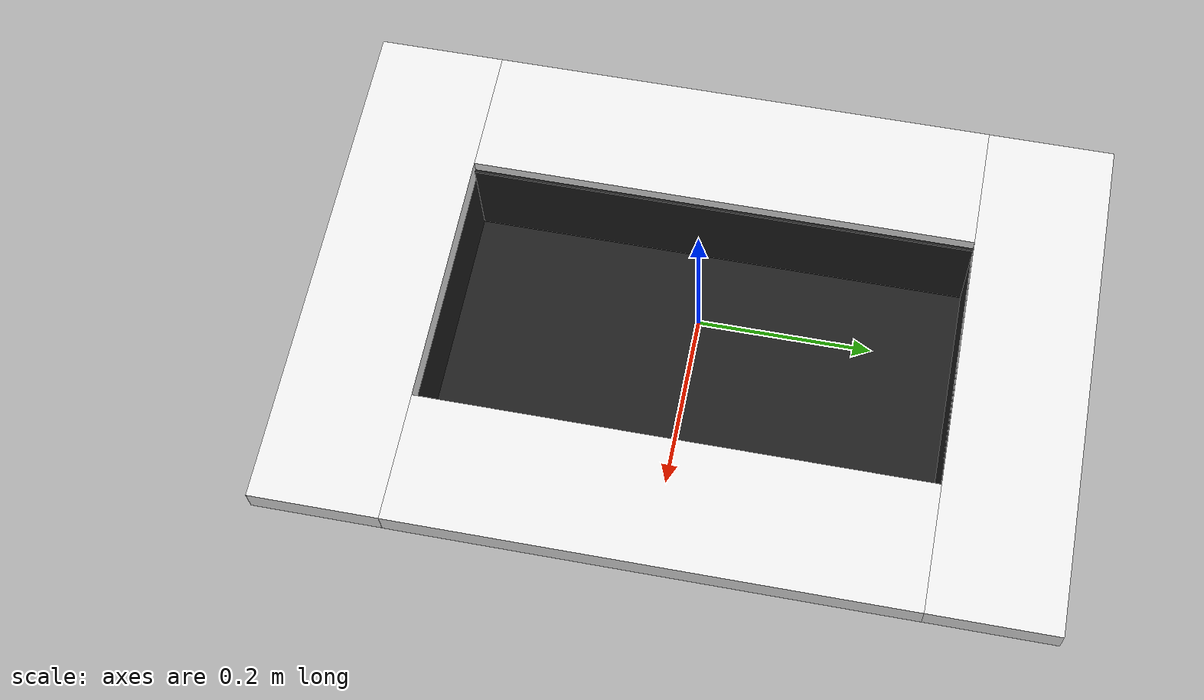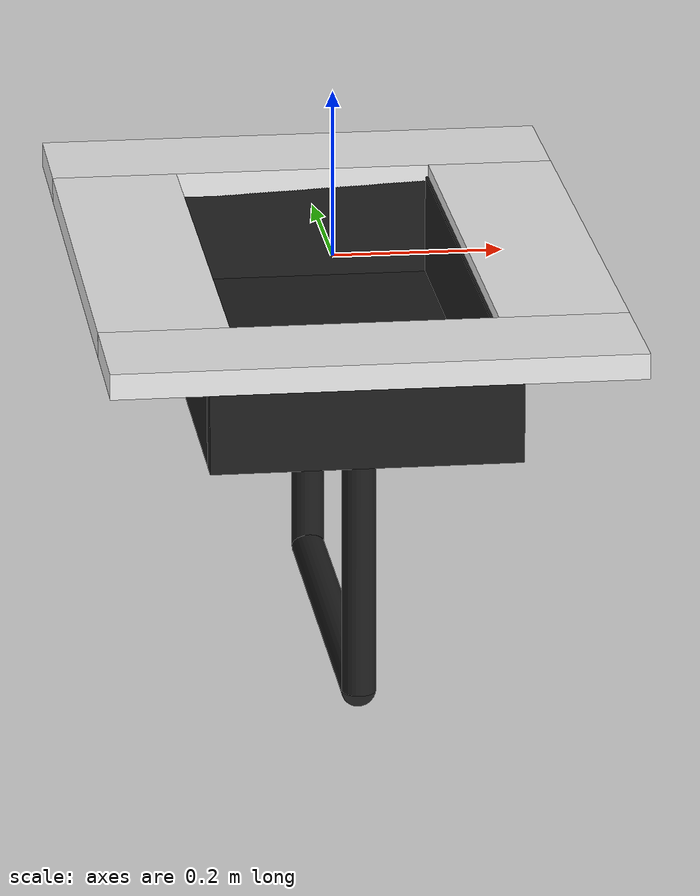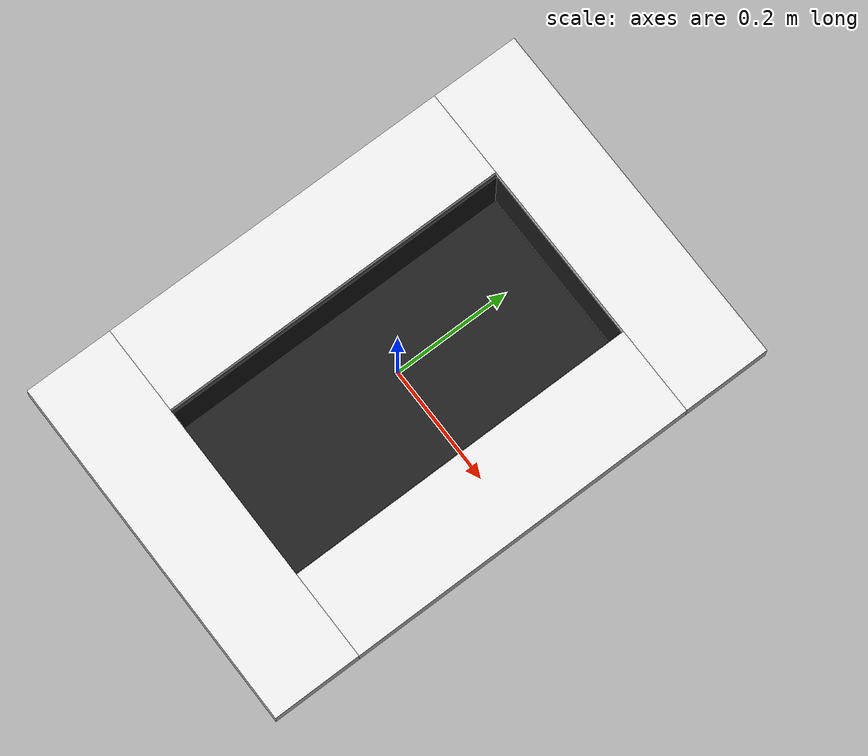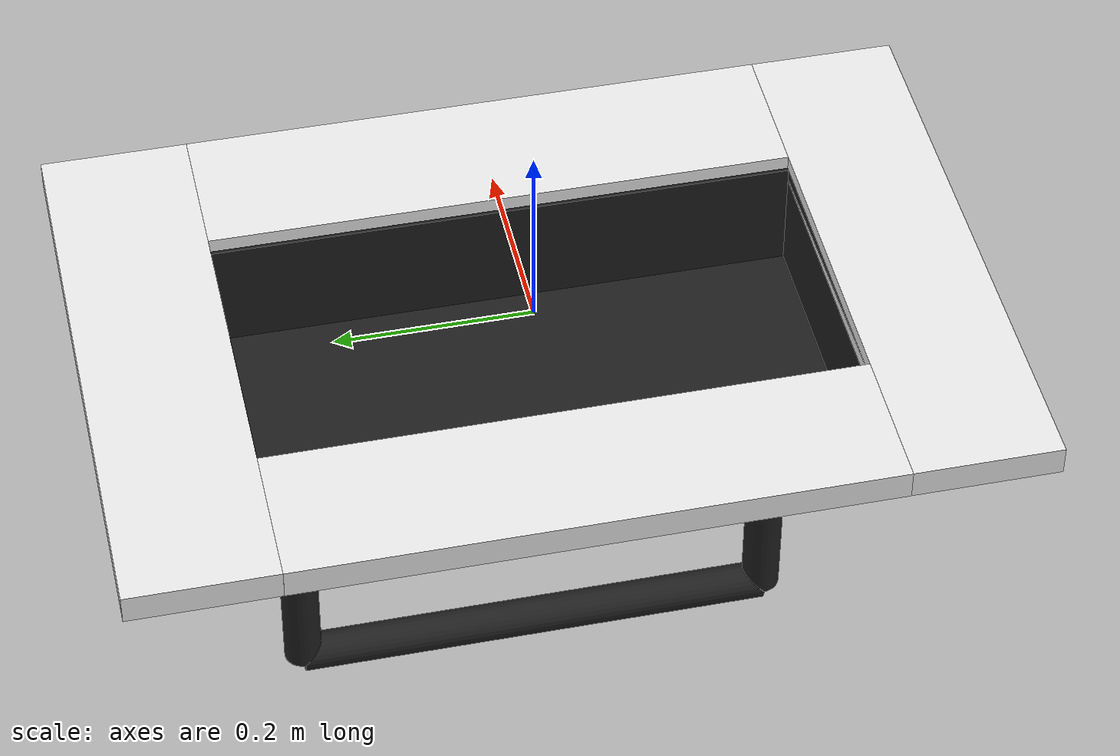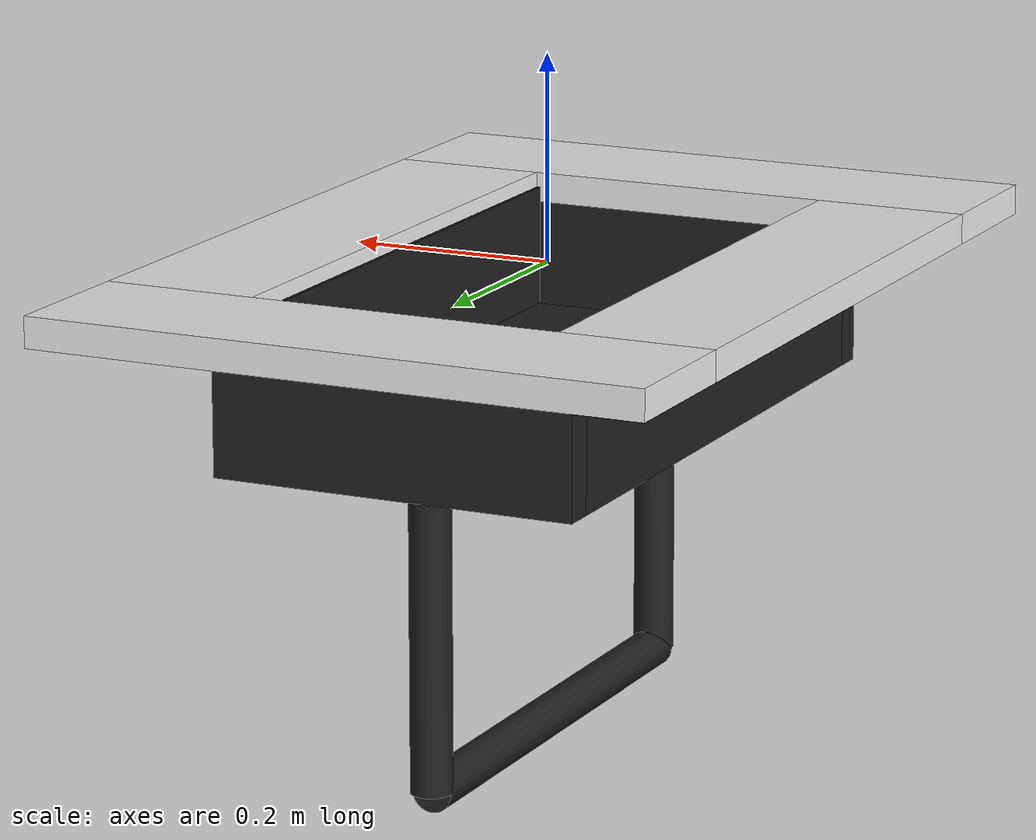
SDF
<?xml version='1.0'?>
<sdf version='1.5'>

  <model name='bin'>
    <pose>0 0 0 0 0 0</pose>
    <self_collide> 0 </self_collide>
    <static> 1</static>

    <link name='rim'>
      <pose>0 0 0 0 0 0</pose>
      <visual name='edge1'>
        <pose>0.2286 0 0 0 0 0</pose>
        <geometry>
          <box><size>0.15 0.6 0.03</size></box>
        </geometry>
        <material>
          <script>
            <uri>file://media/materials/scripts/gazebo.material</uri>
            <name>Gazebo/White</name>
          </script>
        </material>
      </visual>
      <collision name='e1_collide'>
        <pose>0.2286 0 0 0 0 0</pose>
        <geometry>
          <box><size>0.15 0.6 0.03</size></box>
        </geometry>
      </collision>
      <visual name='edge2'>
        <pose>-0.2286 0 0 0 0 0</pose>
        <geometry>
          <box><size>0.15 0.6 0.03</size></box>
        </geometry>
        <material>
          <script>
            <uri>file://media/materials/scripts/gazebo.material</uri>
            <name>Gazebo/White</name>
          </script>
        </material>
      </visual>
      <collision name='e2_collide'>
        <pose>-0.2286 0 0 0 0 0</pose>
        <geometry>
          <box><size>0.15 0.6 0.03</size></box>
        </geometry>
      </collision>
      <visual name='edge3'>
        <pose>0 0.375 0 0 0 0</pose>
        <geometry>
          <box><size>0.607 0.15 0.03</size></box>
        </geometry>
        <material>
          <script>
            <uri>file://media/materials/scripts/gazebo.material</uri>
            <name>Gazebo/White</name>
          </script>
        </material>
      </visual>
      <collision name='e3_collide'>
        <pose>0 0.375 0 0 0 0</pose>
        <geometry>
          <box><size>0.607 0.15 0.03</size></box>
        </geometry>
      </collision>
      <visual name='edge4'>
        <pose>0 -0.375 0 0 0 0</pose>
        <geometry>
          <box><size>0.607 0.15 0.03</size></box>
        </geometry>
        <material>
          <script>
            <uri>file://media/materials/scripts/gazebo.material</uri>
            <name>Gazebo/White</name>
          </script>
        </material>
      </visual>
      <collision name='e4_collide'>
        <pose>0 -0.375 0 0 0 0</pose>
        <geometry>
          <box><size>0.607 0.15 0.03</size></box>
        </geometry>
      </collision>
    </link>

    <link name="bin">
        <visual name="bottom">
          <pose>0 0 -0.135 0 0 0</pose>
          <geometry>
            <box><size>0.3 0.6 0.03</size></box>
          </geometry>
        <material>
          <script>
            <uri>file://media/materials/scripts/gazebo.material</uri>
            <name>Gazebo/FlatBlack</name>
          </script>
        </material>
      </visual>
      <collision name="bottom_collide">
          <pose>0 0 -0.135 0 0 0</pose>
        <geometry>
            <box><size>0.3 0.6 0.03</size></box>
        </geometry>
      </collision>
      <visual name="side1">
        <pose>0.165 0 -0.075 0 0 0</pose>
        <geometry>
          <box><size>0.03 0.6 0.15</size></box>
        </geometry>
        <material>
          <script>
            <uri>file://media/materials/scripts/gazebo.material</uri>
            <name>Gazebo/FlatBlack</name>
          </script>
        </material>
      </visual>
      <collision name="side1_collide">
        <pose>0.165 0 -0.075 0 0 0</pose>
        <geometry>
          <box><size>0.03 0.6 0.15</size></box>
        </geometry>
      </collision>
      <visual name="side2">
        <pose>-0.165 0 -0.075 0 0 0</pose>
        <geometry>
          <box><size>0.03 0.6 0.15</size></box>
        </geometry>
        <material>
          <script>
            <uri>file://media/materials/scripts/gazebo.material</uri>
            <name>Gazebo/FlatBlack</name>
          </script>
        </material>
      </visual>
      <collision name="side2_collide">
        <pose>-0.165 0 -0.075 0 0 0</pose>
        <geometry>
          <box><size>0.03 0.6 0.15</size></box>
        </geometry>
      </collision>
      <visual name="side3">
        <pose>0 0.315 -0.075 0 0 0</pose>
        <geometry>
          <box><size>0.36 0.03 0.15</size></box>
        </geometry>
        <material>
          <script>
            <uri>file://media/materials/scripts/gazebo.material</uri>
            <name>Gazebo/FlatBlack</name>
          </script>
        </material>
      </visual>
      <collision name="side3_collide">
        <pose>0 0.315 -0.075 0 0 0</pose>
        <geometry>
          <box><size>0.36 0.03 0.15</size></box>
        </geometry>
      </collision>
      <visual name="side4">
        <pose>0 -0.315 -0.075 0 0 0</pose>
        <geometry>
          <box><size>0.36 0.03 0.15</size></box>
        </geometry>
        <material>
          <script>
            <uri>file://media/materials/scripts/gazebo.material</uri>
            <name>Gazebo/FlatBlack</name>
          </script>
        </material>
      </visual>
      <collision name="side4_collide">
        <pose>0 -0.315 -0.075 0 0 0</pose>
        <geometry>
          <box><size>0.36 0.03 0.15</size></box>
        </geometry>
      </collision>
  </link>

    <link name='legs'>
        <visual name='leg1'>
          <pose>0 0.25 -0.3 0 0 0</pose>
          <geometry>
            <cylinder>
                <radius>0.02</radius>
                <length>0.3</length>
            </cylinder>
          </geometry>
          <material>
            <script>
              <uri>file://media/materials/scripts/gazebo.material</uri>
              <name>Gazebo/FlatBlack</name>
            </script>
            <diffuse>0.3 0.3 0.3 1</diffuse>
          </material>
        </visual>
        <visual name='leg2'>
          <pose>0 -0.25 -0.3 0 0 0</pose>
          <geometry>
            <cylinder>
                <radius>0.02</radius>
                <length>0.3</length>
            </cylinder>
          </geometry>
          <material>
            <script>
              <uri>file://media/materials/scripts/gazebo.material</uri>
              <name>Gazebo/FlatBlack</name>
            </script>
            <diffuse>0.3 0.3 0.3 1</diffuse>
          </material>
        </visual>
        <visual name='floor'>
         <pose>0 0 -0.45 1.5707 0 0</pose>
          <geometry>
            <cylinder>
                <radius>0.02</radius>
                <length>0.5</length>
            </cylinder>
          </geometry>
          <material>
            <script>
              <uri>file://media/materials/scripts/gazebo.material</uri>
              <name>Gazebo/FlatBlack</name>
            </script>
            <diffuse>0.3 0.3 0.3 1</diffuse>
          </material>
        </visual>
    </link>

  </model>
</sdf>
